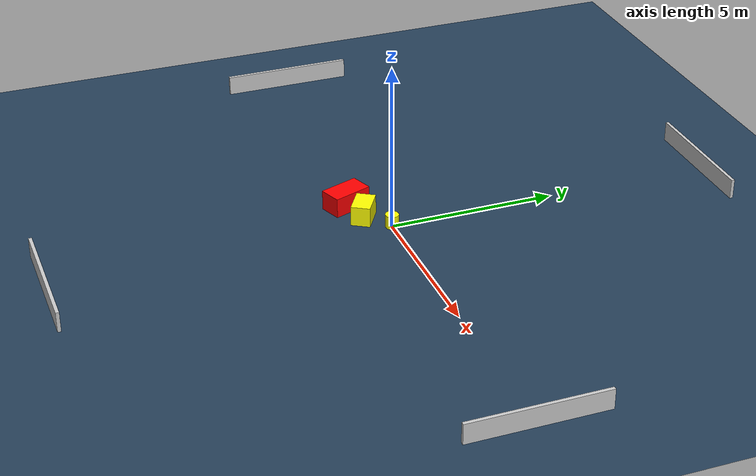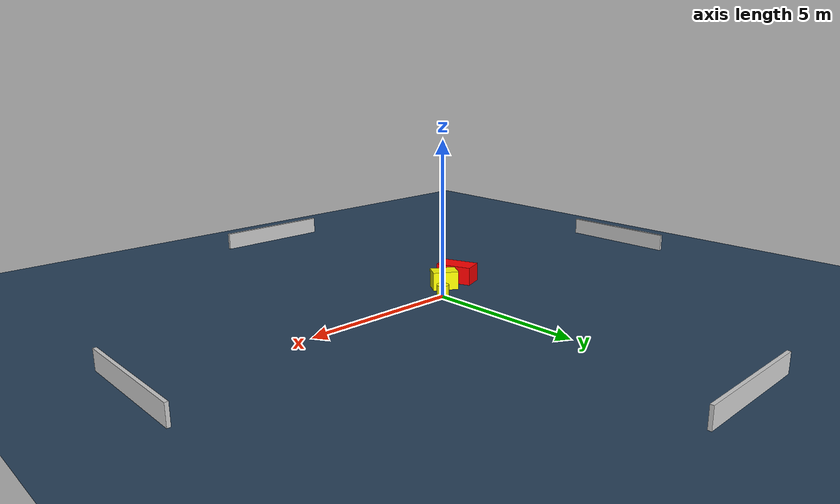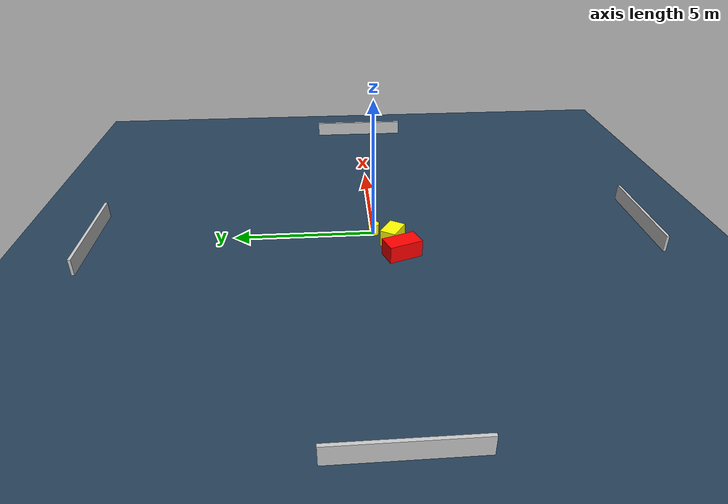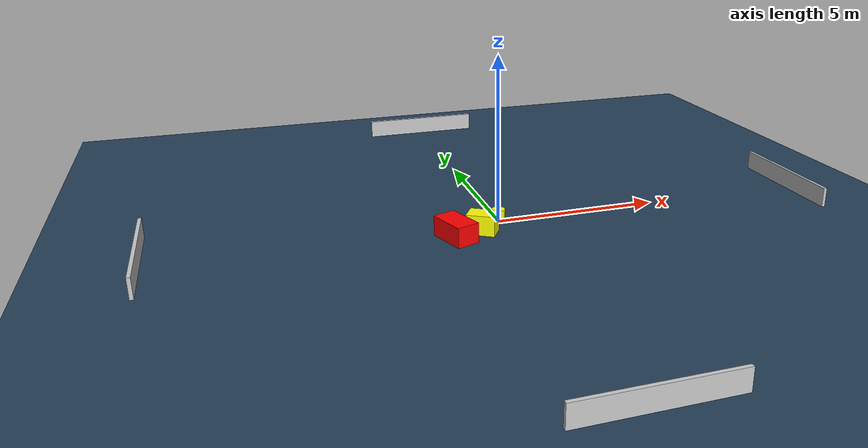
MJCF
<?xml version="1.0" ?>
<mujoco model="generated_environment">
  <option timestep="0.01" integrator="RK4" cone="elliptic"/>
  <default>
    <geom density="1"/>
  </default>
  <asset>
    <texture builtin="gradient" height="3072" name="skybox" rgb1="0.3 0.5 0.7" rgb2="0 0 0" type="skybox" width="512"/>
    <texture builtin="checker" height="300" name="groundplane" rgb1="0.2 0.3 0.4" rgb2="0.1 0.2 0.3" type="2d" width="300"/>
    <material name="groundplane" reflectance="0.2" texrepeat="5 5" texture="groundplane"/>
  </asset>
  <worldbody>
    <light dir="0 0 -1" directional="true" pos="0 0 1.5"/>
    <geom condim="3" friction="0.5 0.005 0.001" material="groundplane" name="floor" pos="0 0 0" size="0 0 0.05" type="plane"/>
    <body name="walls">
      <geom name="wall_1" condim="4" pos="-10.0 0.0 0.3" rgba="0.800000011920929 0.800000011920929 0.800000011920929 1.0" size="0.05 2.0 0.3" type="box"/>
      <geom name="wall_2" condim="4" pos="10.0 0.0 0.3" rgba="0.800000011920929 0.800000011920929 0.800000011920929 1.0" size="0.05 2.0 0.3" type="box"/>
      <geom name="wall_3" condim="4" pos="0.0 -10.0 0.3" rgba="0.800000011920929 0.800000011920929 0.800000011920929 1.0" size="2.0 0.05 0.3" type="box"/>
      <geom name="wall_4" condim="4" pos="0.0 10.0 0.3" rgba="0.800000011920929 0.800000011920929 0.800000011920929 1.0" size="2.0 0.05 0.3" type="box"/>
    </body>
    <body name="robot">
      <joint name="joint_x" type="slide" pos="0 0 0" axis="1 0 0"/>
      <joint name="joint_y" type="slide" pos="0 0 0" axis="0 1 0"/>
      <geom name="robot" type="cylinder" pos="0.0 0.0 0.2" size="0.2 0.2 0.0" mass="5.0" friction="1.0 0.005 0.0001" condim="4" rgba="1.0 1.0 0.0 1.0"/>
    </body>
    <body name="obstacle_1_movable">
      <geom name="obstacle_1_movable" condim="4" pos="-0.6827450248232521 -0.6294229693389745 0.3" euler="0 0 328.5268058008518" friction="0.0 0.005 0.001" rgba="1.0 1.0 0.0 1.0" size="0.4214768680927415 0.28428203201982954 0.3" type="box" mass="0.1"/>
      <joint type="free"/>
    </body>
    <body name="obstacle_2_static">
      <geom name="obstacle_2_static" condim="4" pos="-1.539899633103032 -0.8667367503655837 0.3" euler="0 0 200.09497085591715" friction="0.0 0.005 0.001" rgba="1.0 0.0 0.0 1.0" size="0.3454295361815914 0.6037299046644942 0.3" type="box"/>
    </body>
  </worldbody>
  <actuator>
    <motor name="actuator_x" joint="joint_x" gear="1" ctrlrange="-1 1"/>
    <motor name="actuator_y" joint="joint_y" gear="1" ctrlrange="-1 1"/>
  </actuator>
</mujoco>
